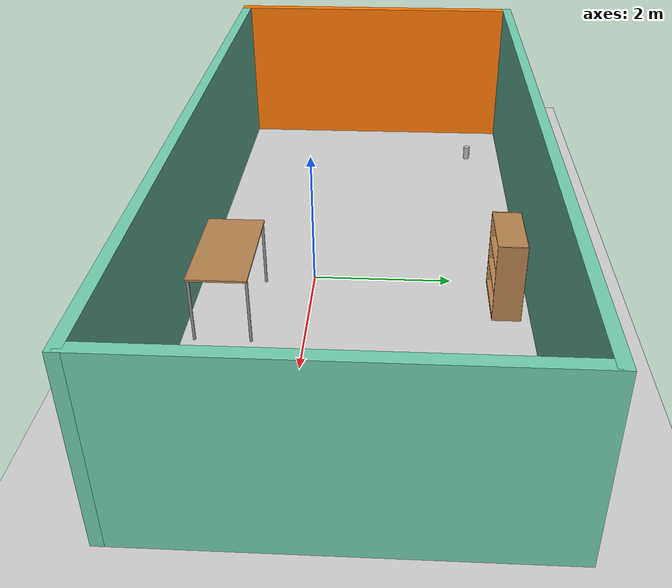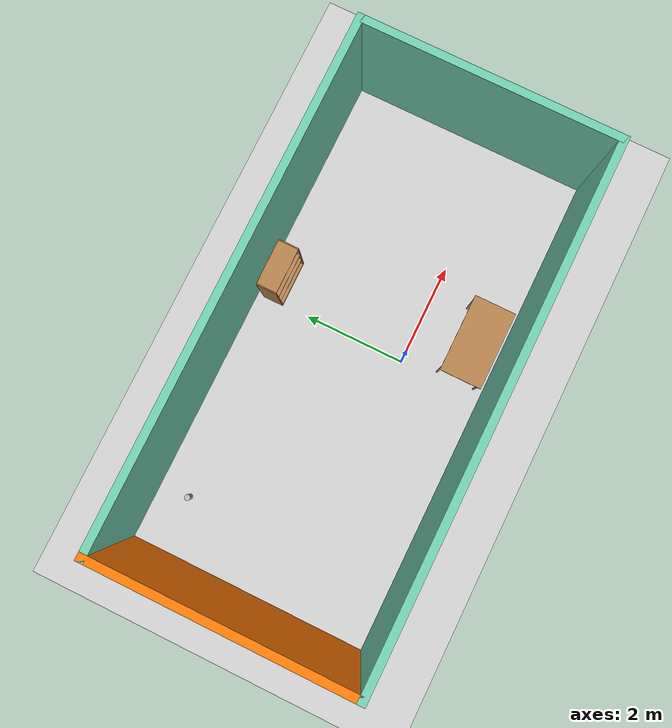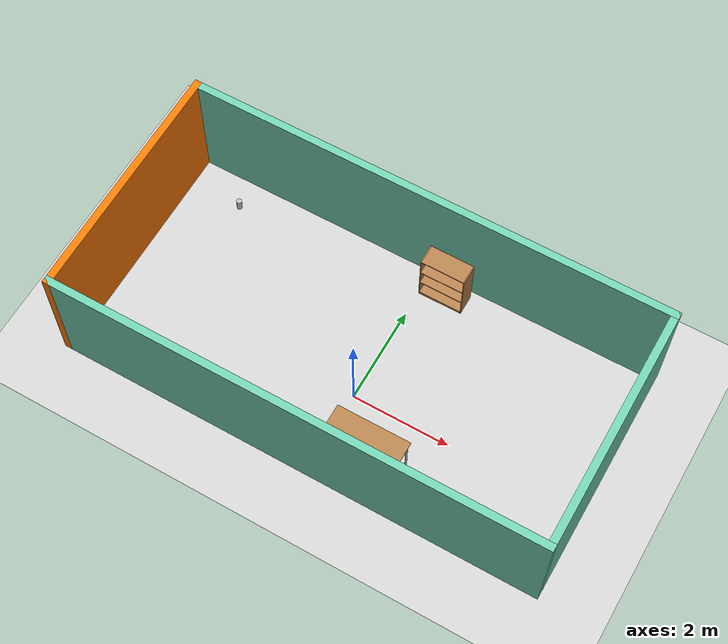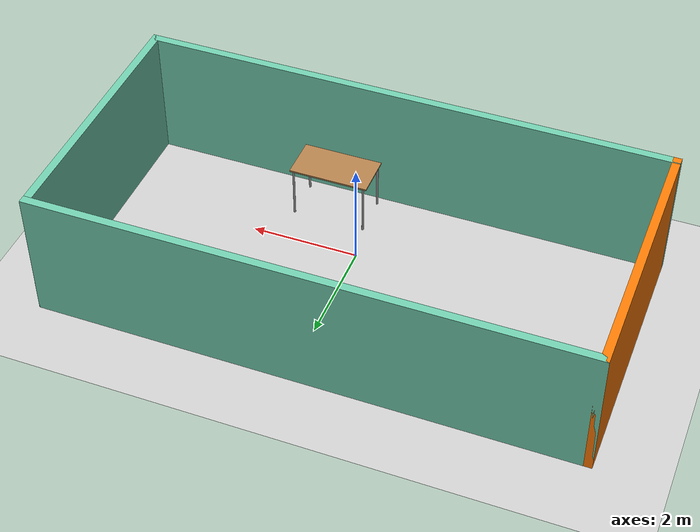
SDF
<sdf version="1.6">
 <world name="default">
  <light name="sun" type="directional">
   <pose>0 0 10 0 -0 0</pose>
   <diffuse>0.8 0.8 0.8 1</diffuse>
   <specular>0.1 0.1 0.1 1</specular>
   <attenuation>
    <range>1000</range>
    <constant>0.9</constant>
    <linear>0.01</linear>
    <quadratic>0.001</quadratic>
   </attenuation>
   <direction>-0.5 0.5 -1</direction>
  </light>
  <model name="ground_plane">
   <static>1</static>
   <link name="link">
    <collision name="collision">
     <geometry><plane><normal>0 0 1</normal><size>100 100</size></plane></geometry>
     <surface><friction><ode><mu>100</mu><mu2>50</mu2></ode></friction></surface>
    </collision>
    <visual name="visual">
     <cast_shadows>0</cast_shadows>
     <geometry><plane><normal>0 0 1</normal><size>100 100</size></plane></geometry>
     <material>
      <script><uri>file://media/materials/scripts/gazebo.material</uri><name>Gazebo/Grey</name></script>
     </material>
    </visual>
   </link>
  </model>
  <gravity>0 0 -9.8</gravity>
  <magnetic_field>6e-06 2.3e-05 -4.2e-05</magnetic_field>
  <atmosphere type="adiabatic"/>
  <physics name="default_physics" default="0" type="ode">
   <max_step_size>0.001</max_step_size>
   <real_time_factor>1</real_time_factor>
   <real_time_update_rate>1000</real_time_update_rate>
  </physics>
  <scene><ambient>0.4 0.4 0.4 1</ambient><background>0.7 0.7 0.7 1</background><shadows>1</shadows></scene>
  <spherical_coordinates>
   <surface_model>EARTH_WGS84</surface_model>
   <latitude_deg>0</latitude_deg>
   <longitude_deg>0</longitude_deg>
   <elevation>0</elevation>
   <heading_deg>0</heading_deg>
  </spherical_coordinates>
  <model name="home">
   <pose>-0.271352 0.713037 0 0 -0 0</pose>
   <link name="Wall_10">
    <collision name="Wall_10_Collision">
     <geometry><box><size>10 0.15 2.5</size></box></geometry>
     <pose>0 0 1.25 0 -0 0</pose>
    </collision>
    <visual name="Wall_10_Visual">
     <pose>0 0 1.25 0 -0 0</pose>
     <geometry><box><size>10 0.15 2.5</size></box></geometry>
     <material>
      <script><uri>file://media/materials/scripts/gazebo.material</uri><name>Gazebo/Grey</name></script>
      <ambient>0.435294 0.796078 0.67451 1</ambient>
     </material>
     <meta><layer>0</layer></meta>
    </visual>
    <pose>0 2.425 0 0 -0 0</pose>
   </link>
   <link name="Wall_12">
    <collision name="Wall_12_Collision">
     <geometry><box><size>5 0.15 2.5</size></box></geometry>
     <pose>0 0 1.25 0 -0 0</pose>
    </collision>
    <visual name="Wall_12_Visual">
     <pose>0 0 1.25 0 -0 0</pose>
     <geometry><box><size>5 0.15 2.5</size></box></geometry>
     <material>
      <script><uri>file://media/materials/scripts/gazebo.material</uri><name>Gazebo/Grey</name></script>
      <ambient>0.435294 0.796078 0.67451 1</ambient>
     </material>
     <meta><layer>0</layer></meta>
    </visual>
    <pose>4.925 0 0 0 0 -1.5708</pose>
   </link>
   <link name="Wall_14">
    <collision name="Wall_14_Collision">
     <geometry><box><size>10 0.15 2.5</size></box></geometry>
     <pose>0 0 1.25 0 -0 0</pose>
    </collision>
    <visual name="Wall_14_Visual">
     <pose>0 0 1.25 0 -0 0</pose>
     <geometry><box><size>10 0.15 2.5</size></box></geometry>
     <material>
      <script><uri>file://media/materials/scripts/gazebo.material</uri><name>Gazebo/Grey</name></script>
      <ambient>0.435294 0.796078 0.67451 1</ambient>
     </material>
     <meta><layer>0</layer></meta>
    </visual>
    <pose>0 -2.425 0 0 -0 3.14159</pose>
   </link>
   <link name="Wall_15">
    <collision name="Wall_15_Collision">
     <geometry><box><size>5 0.15 2.5</size></box></geometry>
     <pose>0 0 1.25 0 -0 0</pose>
    </collision>
    <visual name="Wall_15_Visual">
     <pose>0 0 1.25 0 -0 0</pose>
     <geometry><box><size>5 0.15 2.5</size></box></geometry>
     <material>
      <script><uri>file://media/materials/scripts/gazebo.material</uri><name>Gazebo/Grey</name></script>
      <ambient>0.996078 0.47451 0.0196078 1</ambient>
     </material>
     <meta><layer>0</layer></meta>
    </visual>
    <pose>-4.925 0 0 0 -0 1.5708</pose>
   </link>
   <static>1</static>
  </model>
  <model name="bookshelf">
   <static>1</static>
   <link name="link">
    <inertial><mass>1</mass></inertial>
    <collision name="back">
     <pose>0 0.005 0.6 0 -0 0</pose>
     <geometry><box><size>0.9 0.01 1.2</size></box></geometry>
    </collision>
    <visual name="visual1">
     <pose>0 0.005 0.6 0 -0 0</pose>
     <geometry><box><size>0.9 0.01 1.2</size></box></geometry>
     <material>
      <script><uri>file://media/materials/scripts/gazebo.material</uri><name>Gazebo/Wood</name></script>
     </material>
    </visual>
    <collision name="left_side">
     <pose>0.45 -0.195 0.6 0 -0 0</pose>
     <geometry><box><size>0.02 0.4 1.2</size></box></geometry>
    </collision>
    <visual name="visual2">
     <pose>0.45 -0.195 0.6 0 -0 0</pose>
     <geometry><box><size>0.02 0.4 1.2</size></box></geometry>
     <material>
      <script><uri>file://media/materials/scripts/gazebo.material</uri><name>Gazebo/Wood</name></script>
     </material>
    </visual>
    <collision name="right_side">
     <pose>-0.45 -0.195 0.6 0 -0 0</pose>
     <geometry><box><size>0.02 0.4 1.2</size></box></geometry>
    </collision>
    <visual name="visual3">
     <pose>-0.45 -0.195 0.6 0 -0 0</pose>
     <geometry><box><size>0.02 0.4 1.2</size></box></geometry>
     <material>
      <script><uri>file://media/materials/scripts/gazebo.material</uri><name>Gazebo/Wood</name></script>
     </material>
    </visual>
    <collision name="bottom">
     <pose>0 -0.195 0.03 0 -0 0</pose>
     <geometry><box><size>0.88 0.4 0.06</size></box></geometry>
    </collision>
    <visual name="visual4">
     <pose>0 -0.195 0.03 0 -0 0</pose>
     <geometry><box><size>0.88 0.4 0.06</size></box></geometry>
     <material>
      <script><uri>file://media/materials/scripts/gazebo.material</uri><name>Gazebo/Wood</name></script>
     </material>
    </visual>
    <collision name="top">
     <pose>0 -0.195 1.19 0 -0 0</pose>
     <geometry><box><size>0.88 0.4 0.02</size></box></geometry>
    </collision>
    <visual name="visual5">
     <pose>0 -0.195 1.19 0 -0 0</pose>
     <geometry><box><size>0.88 0.4 0.02</size></box></geometry>
     <material>
      <script><uri>file://media/materials/scripts/gazebo.material</uri><name>Gazebo/Wood</name></script>
     </material>
    </visual>
    <collision name="low_shelf">
     <pose>0 -0.195 0.43 0 -0 0</pose>
     <geometry><box><size>0.88 0.4 0.02</size></box></geometry>
    </collision>
    <visual name="visual6">
     <pose>0 -0.195 0.43 0 -0 0</pose>
     <geometry><box><size>0.88 0.4 0.02</size></box></geometry>
     <material>
      <script><uri>file://media/materials/scripts/gazebo.material</uri><name>Gazebo/Wood</name></script>
     </material>
    </visual>
    <collision name="high_shelf">
     <pose>0 -0.195 0.8 0 -0 0</pose>
     <geometry><box><size>0.88 0.4 0.02</size></box></geometry>
    </collision>
    <visual name="visual7">
     <pose>0 -0.195 0.8 0 -0 0</pose>
     <geometry><box><size>0.88 0.4 0.02</size></box></geometry>
     <material>
      <script><uri>file://media/materials/scripts/gazebo.material</uri><name>Gazebo/Wood</name></script>
     </material>
    </visual>
   </link>
   <pose>0.443854 2.92361 0 0 -0 0</pose>
  </model>
  <model name="beer">
   <link name="link">
    <pose>0 0 0.115 0 -0 0</pose>
    <inertial>
     <mass>0.39</mass>
     <inertia><ixx>0.00058</ixx><ixy>0</ixy><ixz>0</ixz><iyy>0.00058</iyy><iyz>0</iyz><izz>0.00019</izz></inertia>
    </inertial>
    <collision name="collision">
     <geometry><cylinder><radius>0.055</radius><length>0.23</length></cylinder></geometry>
    </collision>
    <visual name="visual">
     <geometry><cylinder><radius>0.055</radius><length>0.23</length></cylinder></geometry>
     <material>
      <script>
       <uri>model://beer/materials/scripts</uri>
       <uri>model://beer/materials/textures</uri>
       <name>Beer/Diffuse</name>
      </script>
     </material>
    </visual>
   </link>
   <pose>-4.02936 2.46626 -7e-06 -1e-06 -0 -2e-06</pose>
  </model>
  <model name="table">
   <static>1</static>
   <link name="link">
    <collision name="surface">
     <pose>0 0 1 0 -0 0</pose>
     <geometry><box><size>1.5 0.8 0.03</size></box></geometry>
     <surface><friction><ode><mu>0.6</mu><mu2>0.6</mu2></ode></friction></surface>
    </collision>
    <visual name="visual1">
     <pose>0 0 1 0 -0 0</pose>
     <geometry><box><size>1.5 0.8 0.03</size></box></geometry>
     <material>
      <script><uri>file://media/materials/scripts/gazebo.material</uri><name>Gazebo/Wood</name></script>
     </material>
    </visual>
    <collision name="front_left_leg">
     <pose>0.68 0.38 0.5 0 -0 0</pose>
     <geometry><cylinder><radius>0.02</radius><length>1</length></cylinder></geometry>
    </collision>
    <visual name="front_left_leg">
     <pose>0.68 0.38 0.5 0 -0 0</pose>
     <geometry><cylinder><radius>0.02</radius><length>1</length></cylinder></geometry>
     <material>
      <script><uri>file://media/materials/scripts/gazebo.material</uri><name>Gazebo/Grey</name></script>
     </material>
    </visual>
    <collision name="front_right_leg">
     <pose>0.68 -0.38 0.5 0 -0 0</pose>
     <geometry><cylinder><radius>0.02</radius><length>1</length></cylinder></geometry>
    </collision>
    <visual name="front_right_leg">
     <pose>0.68 -0.38 0.5 0 -0 0</pose>
     <geometry><cylinder><radius>0.02</radius><length>1</length></cylinder></geometry>
     <material>
      <script><uri>file://media/materials/scripts/gazebo.material</uri><name>Gazebo/Grey</name></script>
     </material>
    </visual>
    <collision name="back_right_leg">
     <pose>-0.68 -0.38 0.5 0 -0 0</pose>
     <geometry><cylinder><radius>0.02</radius><length>1</length></cylinder></geometry>
    </collision>
    <visual name="back_right_leg">
     <pose>-0.68 -0.38 0.5 0 -0 0</pose>
     <geometry><cylinder><radius>0.02</radius><length>1</length></cylinder></geometry>
     <material>
      <script><uri>file://media/materials/scripts/gazebo.material</uri><name>Gazebo/Grey</name></script>
     </material>
    </visual>
    <collision name="back_left_leg">
     <pose>-0.68 0.38 0.5 0 -0 0</pose>
     <geometry><cylinder><radius>0.02</radius><length>1</length></cylinder></geometry>
    </collision>
    <visual name="back_left_leg">
     <pose>-0.68 0.38 0.5 0 -0 0</pose>
     <geometry><cylinder><radius>0.02</radius><length>1</length></cylinder></geometry>
     <material>
      <script><uri>file://media/materials/scripts/gazebo.material</uri><name>Gazebo/Grey</name></script>
     </material>
    </visual>
   </link>
   <pose>0.814533 -1.08271 0 0 -0 0</pose>
  </model>
 </world>
</sdf>
